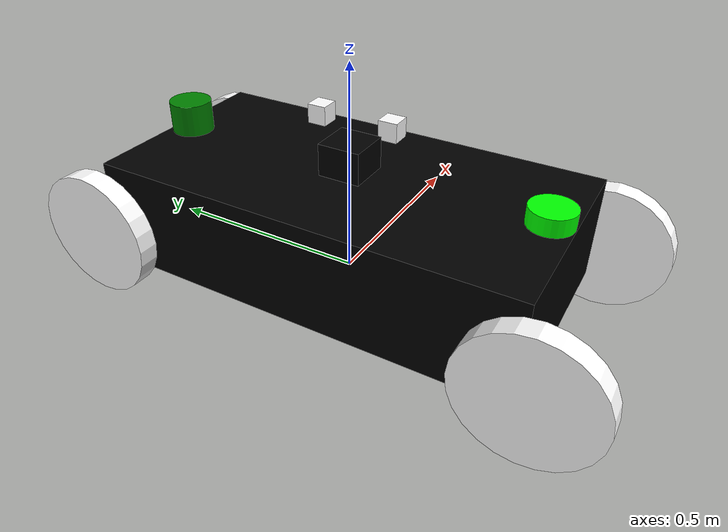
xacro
<?xml version = "1.0"?>
<robot xmlns:xacro="http://www.ros.org/wiki/xacro" name= "rover">

<xacro:property name = "base_link_x" value = "0.5"/>
<xacro:property name = "base_link_y" value = "1"/>
<xacro:property name = "base_link_z" value = "0.25"/>

<xacro:property name = "wheel_link_radius" value = "0.15"/>
<xacro:property name = "wheel_link_length" value = "0.05"/>
<xacro:property name = "wheel_link_z" value = "0.075"/>

<xacro:property name = "density" value = "2710.0"/>
<xacro:property name = "pi_constant" value = "3.14159"/>

<xacro:property name = "base_mass" value = "${density*base_link_x*base_link_y*base_link_z}"/>
<xacro:property name = "wheel_mass" value = "${density*pi_constant*wheel_link_radius*wheel_link_radius*wheel_link_length}"/>

<xacro:property name = "Iz_wheel" value = "${0.5*wheel_mass*wheel_link_radius*wheel_link_radius}"/>
<xacro:property name = "I_wheel" value = "${(1/12)*wheel_mass*(3*wheel_link_radius*wheel_link_radius+wheel_link_length*wheel_link_length)}"/>

<xacro:macro name = "inertial_wheel">
<inertial>
<origin rpy = "0 0 0" xyz = "0 0 0"/>
<mass value = "${wheel_mass}"/>
<inertia ixx = "${I_wheel}" ixy = "0" ixz = "0" iyy = "${I_wheel}" iyz = "0" izz = "${Iz_wheel}" />
</inertial>
</xacro:macro>

<xacro:include filename="$(find gazebo)/model/rover.gazebo"/>

<material name = "black">
    <color rgba = " 0 0 0 1"/>
</material>

<material name = "white">
    <color rgba = " 1 1 1 1"/>
</material>

<material name = "green">
    <color rgba = " 0 0.5 0 1"/>
</material>

<material name = "blue">
    <color rgba = " 0 0 0.5 1"/>
</material>

<material name = "red">
    <color rgba = " 0.5 0 0 1"/>
</material>

<link name = "dummy">
<origin xyz = "0 0 0" rpy = "0 0 0"/>
</link>

<joint name = "base_link_joint" type = "fixed">
<parent link = "dummy"/>
<child link = "base_link"/>
<origin xyz = "0 0 0" rpy = "0 0 0"/>
</joint>

    <link name = "base_link">
        <visual>
            <geometry>
                <box size = "${base_link_x} ${base_link_y} ${base_link_z}"/>
            </geometry>
            <origin xyz = " 0 0 0.125" rpy = "0 0 0"/>
            <material name = "black"/>
        </visual>

    <collision>
            <geometry>
                <box size = "${base_link_x} ${base_link_y} ${base_link_z}"/>

            </geometry>
            <origin xyz = " 0 0 0.125" rpy = "0 0 0"/>
    </collision>

    <inertial>
        <origin xyz = " 0 0 0.125" rpy = "0 0 0"/>
        <mass value= "${base_mass}"/>
        <inertia ixx = "${(1/12)*base_mass*(base_link_y*base_link_y+base_link_z*base_link_z)}"
        ixy = "0" ixz = "0"
        iyy = "${(1/12)*base_mass*(base_link_x*base_link_x+base_link_z*base_link_z)}"
        izz = "${(1/12)*base_mass*(base_link_y*base_link_y+base_link_x*base_link_x)}"
        iyz = "0"/>
    </inertial>

    </link>

<joint name = "left_front_wheel_joint" type = "continuous">
    <parent link = "base_link"/>
    <child link = "left_front_link"/>
    <origin xyz = "0.275 ${-base_link_y/2-wheel_link_length/2} ${wheel_link_z}" rpy = "0 0 0" />
    <axis xyz ="1 0 0"/>
    <limit effort = "1000" velocity = "1000"/>
    <dynamics damping = "1.0" friction = "1.0"/>
</joint>

    <link name = "left_front_link">
        <visual>
            <geometry>
                <cylinder radius = "${wheel_link_radius}" length = "${wheel_link_length}"/>

            </geometry>
            <origin xyz = " 0 0 0" rpy = "0 1.570795 0"/>
            <material name = "white"/>
        </visual>

    <collision>
            <geometry>
                 <cylinder radius = "${wheel_link_radius}" length = "${wheel_link_length}"/>

            </geometry>
            <origin xyz = " 0 0 0" rpy = "0 1.570795 0"/>
    </collision>

<xacro:inertial_wheel/>

    </link>

<joint name = "right_front_wheel_joint" type = "continuous">
    <parent link = "base_link"/>
    <child link = "right_front_link"/>
    <origin xyz = "-0.275 ${-base_link_y/2-wheel_link_length/2} ${wheel_link_z}" rpy = "0 0 0" />
    <axis xyz ="1 0 0"/>
    <limit effort = "1000" velocity = "1000"/>
    <dynamics damping = "1.0" friction = "1.0"/>

</joint>

    <link name = "right_front_link">
        <visual>
            <geometry>
                <cylinder radius = "${wheel_link_radius}" length = "${wheel_link_length}"/>

            </geometry>
            <origin xyz = " 0 0 0" rpy = "0 1.570795 0"/>
            <material name = "white"/>
        </visual>

    <collision>
            <geometry>
                 <cylinder radius = "${wheel_link_radius}" length = "${wheel_link_length}"/>

            </geometry>
            <origin xyz = " 0 0 0" rpy = "0 1.570795 0"/>
    </collision>

  <xacro:inertial_wheel/>

    </link>

<joint name = "left_back_wheel_joint" type = "continuous">
    <parent link = "base_link"/>
    <child link = "left_back_link"/>
    <origin xyz = "0.275 ${base_link_y/2+wheel_link_length/2} ${wheel_link_z}" rpy = "0 0 0" />
    <axis xyz ="1 0 0"/>
    <limit effort = "1000" velocity = "1000"/>
    <dynamics damping = "1.0" friction = "1.0"/>

</joint>

    <link name = "left_back_link">
        <visual>
            <geometry>
               <cylinder radius = "${wheel_link_radius}" length = "${wheel_link_length}"/>

            </geometry>
            <origin xyz = " 0 0 0" rpy = "0 1.570795 0"/>
            <material name = "white"/>
        </visual>

     <collision>
            <geometry>
                <cylinder radius = "${wheel_link_radius}" length = "${wheel_link_length}"/>

            </geometry>
            <origin xyz = " 0 0 0" rpy = "0 1.570795 0"/>
    </collision>

    <xacro:inertial_wheel/>

    </link>

<joint name = "right_back_wheel_joint" type = "continuous">
    <parent link = "base_link"/>
    <child link = "right_back_link"/>
    <origin xyz = "-0.275 ${base_link_y/2+wheel_link_length/2} ${wheel_link_z}" rpy = "0 0 0" />
    <axis xyz ="1 0 0"/>
    <limit effort = "1000" velocity = "1000"/>
    <dynamics damping = "1.0" friction = "1.0"/>

</joint>

    <link name = "right_back_link">
        <visual>
            <geometry>
                 <cylinder radius = "${wheel_link_radius}" length = "${wheel_link_length}"/>

            </geometry>
            <origin xyz = " 0 0 0" rpy = "0 1.570795 0"/>
            <material name = "white"/>
        </visual>

     <collision>
            <geometry>
                <cylinder radius = "${wheel_link_radius}" length = "${wheel_link_length}"/>

            </geometry>
            <origin xyz = " 0 0 0" rpy = "0 1.570795 0"/>
    </collision>

       <xacro:inertial_wheel/>

    </link>

<joint name = "lidar_joint" type = "fixed">
    <parent link = "base_link"/>
    <child link = "lidar_link"/>
    <origin xyz = "0 0.45 0.275" rpy = "0 0 0" />

</joint>

 <link name="lidar_link">
    <visual>
      <geometry>
        <cylinder radius="0.05" length="0.1"/>
      </geometry>
      <material name="green"/>
    </visual>
    <collision>
      <geometry>
        <cylinder radius="0.05" length="0.1"/>
      </geometry>
    </collision>
    <inertial>
      <mass value="0.5"/>
      <inertia ixx="0.01" ixy="0" ixz="0" iyy="0.01" iyz="0" izz="0.01"/>
    </inertial>
  </link>

  <!-- Gazebo Plugin for Lidar -->
  <gazebo reference="lidar_link">
    <sensor name="lidar_sensor" type="ray">
      <pose>0 0 0 0 0 0</pose>
      <visualize>true</visualize>
      <update_rate>10</update_rate>
      <ray>
        <scan>
          <horizontal>
            <samples>360</samples>
            <resolution>1</resolution>
            <min_angle>-3.14159</min_angle>
            <max_angle>3.14159</max_angle>
          </horizontal>
        </scan>
        <range>
          <min>0.1</min>
          <max>10.0</max>
          <resolution>0.01</resolution>
        </range>
        <noise>
          <type>gaussian</type>
          <mean>0.0</mean>
          <stddev>0.01</stddev>
        </noise>
      </ray>
      <plugin name="lidar_plugin" filename="libgazebo_ros_ray_sensor.so">
        <ros>
          <namespace>lidar</namespace>
          <remapping>~/out:=scan</remapping>
        </ros>
        <frame_name>lidar_link</frame_name>
      </plugin>
    </sensor>
  </gazebo>

<gazebo>
<plugin name = 'skid_steer_drive' filename = 'libgazebo_ros_diff_drive.so'>
<ros>
<namespace></namespace>
</ros>
<num_wheel_pairs>2</num_wheel_pairs>

<left_joint>left_front_wheel_joint</left_joint>
<right_joint>right_back_wheel_joint</right_joint>
<wheel_separation>1.05</wheel_separation>

<left_joint>left_back_wheel_joint</left_joint>
<right_joint>right_front_wheel_joint</right_joint>
<wheel_separation>1.05</wheel_separation>

<updateRate>$10</updateRate>

<wheel_diameter>0.15</wheel_diameter>
<wheel_diameter>0.15</wheel_diameter>

<max_wheel_torque>2000</max_wheel_torque>
<max_wheel_acceleration>5.0</max_wheel_acceleration>

<commandTopic>cmd_vel</commandTopic>
<odometryTopic>odom</odometryTopic>

<odometryFrame>odom</odometryFrame>

 <robotBaseFrame>base_link</robotBaseFrame>

  <odometrySource>1</odometrySource>
  <publishOdom>true</publishOdom>
  <publishWheelJointState>true</publishWheelJointState>
<publish_odom>true</publish_odom>
<publish_odom_tf>true</publish_odom_tf>
<publish_wheel_tf>true</publish_wheel_tf>
<odom_publish_frequency>1</odom_publish_frequency>

<odometry_frame>odom</odometry_frame>
<robot_base_frame>base_link</robot_base_frame>

</plugin>
</gazebo>

<joint name = "imu_joint" type = "fixed">
    <parent link = "base_link"/>
    <child link = "imu_link"/>
    <origin xyz = "0 -0.45 0.275" rpy = "0 0 0" />

</joint>

  <!-- IMU Link -->
  <link name="imu_link">
    <visual>
      <geometry>
        <cylinder radius="0.05" length="0.04"/>
      </geometry>
       <origin xyz="0 0 0" rpy="0 0 0"/>
      <material name="black">
        <color rgba="0 1 0 1"/>
      </material>
    </visual>
    <collision>
      <geometry>
        <cylinder radius="0.05" length="0.04"/>
      </geometry>
    </collision>
</link>
  <gazebo reference="imu_link">
    <sensor name="imu_sensor" type="imu">
      <always_on>true</always_on>
      <update_rate>10.0</update_rate>
      <plugin name="imu_controller" filename="libgazebo_ros_imu_sensor.so">
        <ros>
          <remapping>imu_controller/out:=imu</remapping>
        </ros>
        <frame_name>imu_link</frame_name>
      </plugin>
    </sensor>
    <material>Gazebo/Grey</material>
  </gazebo>

    <!-- GPS Sensor -->
  <link name="gps_link">
    <visual>
      <geometry>
        <box size="0.1 0.1 0.1"/>
      </geometry>
      <origin xyz="0 0 0" rpy="0 0 0"/>
      <material name="black"/>
    </visual>
    <collision>
      <geometry>
<box size="0.1 0.1 0.1"/>
      </geometry>
    </collision>

    </link>

 <gazebo reference="gps_link">
    <sensor name="gps_sensor" type="gps">
     <origin xyz="0 0 0" rpy="0 0 0"/>
        <always_on>true</always_on>
        <update_rate>1.0</update_rate>
        <ros>
            <namespace>/robot</namespace>
        </ros>
        <plugin name="gps" filename="libgazebo_ros_gps_sensor.so">
            <ros>
                <remapping>gps/out:=gps</remapping>
            </ros>

            <reference_latitude>0.0</reference_latitude>
            <reference_longitude>0.0</reference_longitude>
            <reference_altitude>0.0</reference_altitude>
            <gaussian_noise>0.00001</gaussian_noise>
            <drift>0.00001</drift>
            <frame_name>gps_link</frame_name>
        </plugin>
    </sensor>
    <material>Gazebo/Red</material>
  </gazebo>

<joint name = "gps_joint" type = "fixed">
    <parent link = "base_link"/>
    <child link = "gps_link"/>
    <origin xyz = "0 0 0.275" rpy = "0 0 0" />

</joint>

<joint name = "camera_joint" type = "fixed">
    <parent link = "base_link"/>
    <child link = "camera_link"/>
    <origin xyz = "0.2 0 0.275" rpy = "0 0 0" />

</joint>

    <link name="camera_link">
        <visual>
            <geometry>
            <box size="0.05 0.05 0.05"/>
            </geometry>
            <material name="white"/>
        </visual>

         <gazebo reference="camera_link">
        <sensor type="depth" name="my_camera">
            <update_rate>20</update_rate>
            <visualize>true</visualize>
            <camera name="cam">
                <horizontal_fov>1.3962634</horizontal_fov>
                <image>
                    <width>640</width>
                    <height>480</height>
                    <format>R8B8G8</format>
                </image>
                <clip>
                    <near>0.02</near>
                    <far>300</far>
                </clip>
                <noise>
                    <type>gaussian</type>
                    <mean>0.0</mean>
                    <stddev>0.007</stddev>
                </noise>
            </camera>
            <plugin name="camera_controller" filename="libgazebo_ros_camera.so">
                <frame_name>camera_link_optical</frame_name>
                <min_depth>0.1</min_depth>
                <max_depth>500</max_depth>
            </plugin>
        </sensor>
    </gazebo>

    </link>

    <joint name="stereo" type="fixed">
        <parent link="base_link"/>
        <child link="stereo_link"/>
        <origin xyz="0.2 0.2 0.275" rpy="0 0 0"/>
    </joint>

    <link name="stereo_link">
        <visual>
            <geometry>
            <box size="0.05 0.05 0.05"/>
            </geometry>
            <origin xyz="0 0 0" rpy="0 0 0"/>
            <material name="white"/>
        </visual>
    </link>

    <gazebo reference="stereo_link">
    <sensor name="camera" type="depth">
        <always_on>true</always_on>
        <update_rate>15</update_rate>
        <pose>0 0 0 0 0 0</pose>
        <camera name="realsense_depth_camera">
            <horizontal_fov>1.46608</horizontal_fov>
            <image>
                <width>424</width>
                <height>240</height>
                <format>B8G8R8</format>
            </image>
            <clip>
                <near>0.05</near>
                <far>8</far>
            </clip>
        </camera>
        <plugin name="camera" filename="libgazebo_ros_camera.so">
            <ros>
                <namespace>d430</namespace>
                <remapping>camera/image_raw:=color/image_raw</remapping>
                <remapping>camera/depth/image_raw:=depth/image_rect_raw</remapping>
                <remapping>camera/camera_info:=camera_info</remapping>
                <remapping>camera/depth/camera_info:=depth/camera_info</remapping>
                <remapping>camera/points:=depth/points</remapping>
            </ros>
            <camera_name>camera</camera_name>
            <frame_name>stereo_link</frame_name>
            <hack_baseline>0.07</hack_baseline>
            <min_depth>0.05</min_depth>
            <max_depth>8.0</max_depth>
        </plugin>
    </sensor>
</gazebo>

</robot>

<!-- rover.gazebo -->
<robot xmlns:xacro="http://www.ros.org/wiki/xacro">
<xacro:property name = "base_link_y" value = "1"/>
<xacro:property name = "wheel_link_radius" value = "0.15"/>
<xacro:property name = "wheel_link_length" value = "0.05"/>

<gazebo reference = "base_link">
<mu1>0.2</mu1>
<mu2>0.2</mu2>
<material>Gazebo/Black</material>
</gazebo>

<gazebo reference = "left_front_link">
<mu1>0.2</mu1>
<mu2>0.2</mu2>
<material>Gazebo/White</material>
</gazebo>

<gazebo reference = "left_back_link">
<mu1>0.2</mu1>
<mu2>0.2</mu2>
<material>Gazebo/White</material>
</gazebo>

<gazebo reference = "right_front_link">
<mu1>0.2</mu1>
<mu2>0.2</mu2>
<material>Gazebo/White</material>
</gazebo>

<gazebo reference = "right_back_link">
<mu1>0.2</mu1>
<mu2>0.2</mu2>
<material>Gazebo/White</material>
</gazebo>

<gazebo reference = "gps_link">
<mu1>0.2</mu1>
<mu2>0.2</mu2>
<material>Gazebo/Grey</material>
</gazebo>

<gazebo reference = "camera_link">
<mu1>0.2</mu1>
<mu2>0.2</mu2>
<material>Gazebo/Blue</material>
</gazebo>

<gazebo reference = "lidar_link">
<mu1>0.2</mu1>
<mu2>0.2</mu2>
<material>Gazebo/Blue</material>

    <sensor type="ray" name="head_hokuyo_sensor">
      <pose>0 0 0 0 0 0</pose>
      <visualize>true</visualize>
      <update_rate>20</update_rate>
      <ray>
        <scan>
          <horizontal>
            <samples>720</samples>
            <resolution>1</resolution>
            <min_angle>-3.14</min_angle>
            <max_angle>3.14</max_angle>
          </horizontal>
        </scan>
        <range>
          <min>0.5</min>
          <max>20.0</max>
          <resolution>0.01</resolution>
        </range>
        <noise>
          <type>gaussian</type>

          <mean>0.0</mean>
          <stddev>0.01</stddev>
        </noise>
      </ray>
      <plugin name="gazebo_ros_head_hokuyo_controller" filename="libgazebo_ros_laser.so">
        <topicName>/rrbot/laser/scan</topicName>
        <frameName>lidar_1</frameName>
      </plugin>
    </sensor>

</gazebo>

<gazebo reference = "imu_link">
<mu1>0.2</mu1>
<mu2>0.2</mu2>
<material>Gazebo/Grey</material>
</gazebo>

<gazebo>
        <plugin name='diff_drive' filename='libgazebo_ros_diff_drive.so'>
            <num_wheel_pairs>2</num_wheel_pairs>

            <!-- wheels -->
            <left_joint>left_front_wheel_joint</left_joint>

            <right_joint>right_front_wheel_joint</right_joint>

           <left_joint>left_back_wheel_joint</left_joint>

            <right_joint>right_back_wheel_joint</right_joint>

            <!-- kinematics -->
            <wheel_separation>0.45</wheel_separation>
            <wheel_diameter>0.2</wheel_diameter>

            <wheel_separation>0.45</wheel_separation>
            <wheel_diameter>0.2</wheel_diameter>

            <!-- limits -->
            <max_wheel_torque>10</max_wheel_torque>
            <max_wheel_acceleration>1.0</max_wheel_acceleration>

            <!-- output -->
            <publish_odom>true</publish_odom>
            <publish_odom_tf>true</publish_odom_tf>
            <publish_wheel_tf>true</publish_wheel_tf>

            <odometry_frame>odom</odometry_frame>
            <robot_base_frame>base_link</robot_base_frame>
        </plugin>
    </gazebo>

<!-- hokuyo -->
  <gazebo reference="lidar_link">
    <sensor type="ray" name="head_hokuyo_sensor">
      <pose>0 0 0 0 0 0</pose>
      <visualize>true</visualize>
      <update_rate>20</update_rate>
      <ray>
        <scan>
          <horizontal>
            <samples>720</samples>
            <resolution>1</resolution>
            <min_angle>-3.14</min_angle>
            <max_angle>3.14</max_angle>
          </horizontal>
        </scan>
        <range>
          <min>0.5</min>
          <max>20.0</max>
          <resolution>0.01</resolution>
        </range>
        <noise>
          <type>gaussian</type>

          <mean>0.0</mean>
          <stddev>0.01</stddev>
        </noise>
      </ray>
      <plugin name="gazebo_ros_head_hokuyo_controller" filename="libgazebo_ros_laser.so">
        <topicName>/scan</topicName>
        <frameName>lidar_1</frameName>
      </plugin>
    </sensor>
  </gazebo>

<sensor name="imu_sensor" type="imu">
  <pose>0 0 0 0 0 0</pose> <!-- Position and orientation relative to the parent link -->
  <plugin name="imu_plugin" filename="libgazebo_ros_imu.so">
    <ros>
      <namespace>/robot</namespace>
    </ros>
    <update_rate>100</update_rate>
    <gaussian_noise>0.01</gaussian_noise>
    <always_on>true</always_on>
    <visualize>true</visualize>
  </plugin>
</sensor>

<sensor name="gps_sensor" type="gps">
  <pose>0 0 0.275 0 0 0</pose> <!-- Position and orientation relative to the parent link -->
  <plugin name="gps_plugin" filename="libgazebo_ros_gps_sensor.so">
    <topicName>/gps</topicName>
    <frameName>gps_link</frameName>
    <update_rate>10.0</update_rate>
    <reference_latitude>0.0</reference_latitude>
    <reference_longitude>0.0</reference_longitude>
    <reference_altitude>0.0</reference_altitude>
    <gaussian_noise>0.00001</gaussian_noise>
    <drift>0.00001</drift>
  </plugin>
</sensor>

<sensor name="camera_sensor" type="camera">
  <pose>0 0 0.3 0 0 0</pose> <!-- Position and orientation relative to the parent link -->
  <camera>
    <horizontal_fov>1.047</horizontal_fov>
    <image>
      <width>640</width>
      <height>480</height>
      <format>R8G8B8</format>
    </image>
    <clip>
      <near>0.1</near>
      <far>100</far>
    </clip>
  </camera>
  <plugin name="camera_plugin" filename="libgazebo_ros_camera.so">
    <cameraName>camera</cameraName>
    <imageTopicName>/camera/image_raw</imageTopicName>
    <cameraInfoTopicName>/camera/camera_info</cameraInfoTopicName>
  </plugin>
</sensor>

<gazebo>
  <sensor name="imu_sensor" type="imu">...</sensor>
  <sensor name="lidar_sensor" type="ray">...</sensor>
  <sensor name="gps_sensor" type="gps">...</sensor>
  <sensor name="camera_sensor" type="camera">...</sensor>
</gazebo>

</robot>
